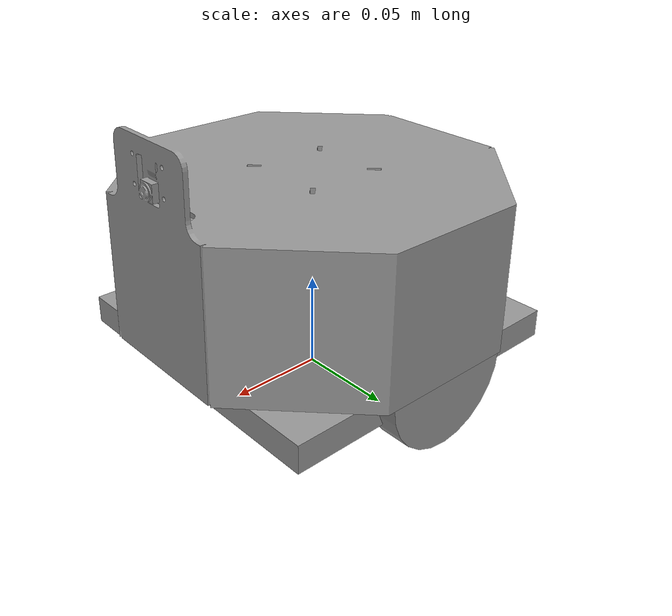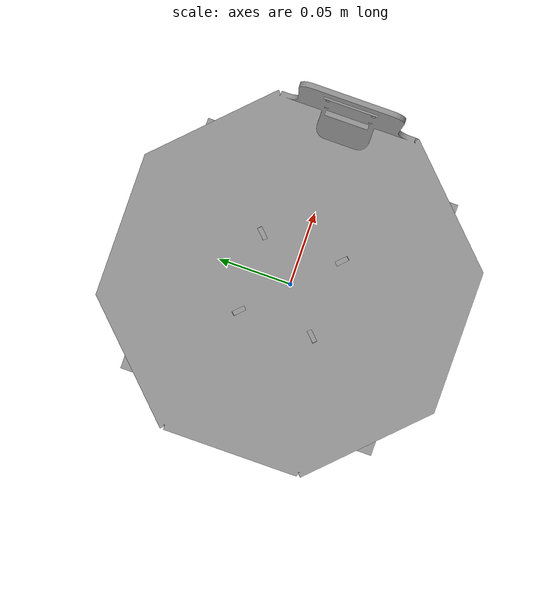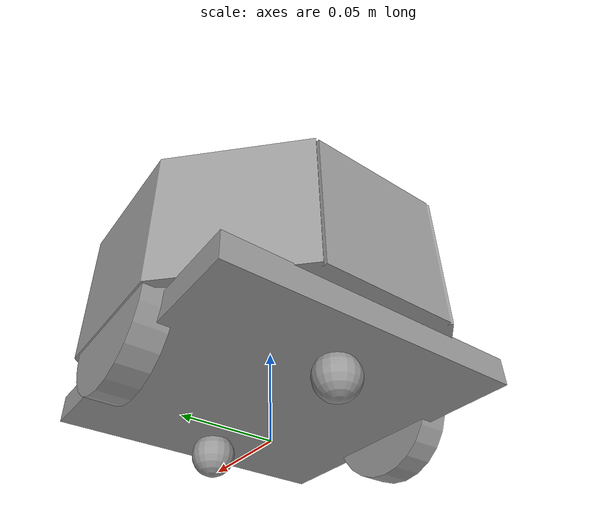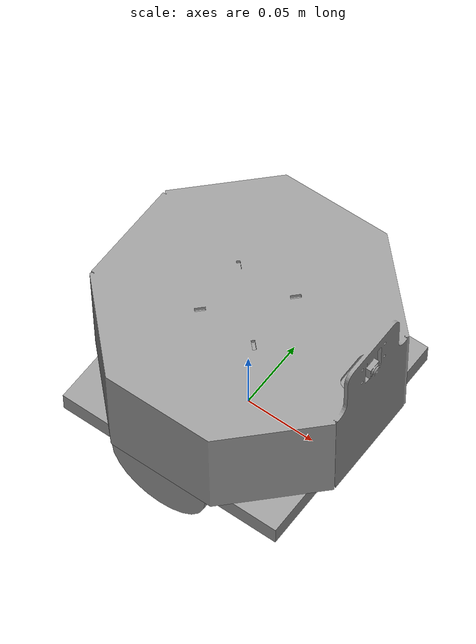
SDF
<?xml version='1.0'?>
<sdf version='1.6'>
  <model name='Romi'>
    <link name='chassis'>
      <pose frame=''>-0.001509 0 0.027 0 -0 0</pose>
      <inertial>
        <mass>0.00251652</mass>
        <inertia>
          <ixx>6.31e-06</ixx>
          <ixy>0</ixy>
          <ixz>0</ixz>
          <iyy>0.00020976</iyy>
          <iyz>0</iyz>
          <izz>0.00021598</izz>
        </inertia>
        <pose frame=''>0 0 0 0 -0 0</pose>
      </inertial>
      <self_collide>0</self_collide>
      <kinematic>0</kinematic>
      <visual name='visual'>
        <pose frame=''>0 0 0 0 -0 0</pose>
        <geometry>
          <box>
            <size>0.164 0.164 0.014559</size>
          </box>
        </geometry>
        <material>
          <lighting>1</lighting>
          <script>
            <uri>file://media/materials/scripts/gazebo.material</uri>
            <name>Gazebo/Grey</name>
          </script>
          <ambient>0.3 0.3 0.3 1</ambient>
          <diffuse>0.7 0.7 0.7 1</diffuse>
          <specular>0.01 0.01 0.01 1</specular>
          <emissive>0 0 0 1</emissive>
          <shader type='vertex'>
            <normal_map>__default__</normal_map>
          </shader>
        </material>
        <cast_shadows>1</cast_shadows>
        <transparency>0</transparency>
      </visual>
      <collision name='collision'>
        <laser_retro>0</laser_retro>
        <max_contacts>10</max_contacts>
        <pose frame=''>0 0 0 0 -0 0</pose>
        <geometry>
          <box>
            <size>0.164 0.164 0.014559</size>
          </box>
        </geometry>
        <surface>
          <friction>
            <ode>
              <mu>1</mu>
              <mu2>1</mu2>
              <fdir1>0 0 0</fdir1>
              <slip1>0</slip1>
              <slip2>0</slip2>
            </ode>
            <torsional>
              <coefficient>1</coefficient>
              <patch_radius>0</patch_radius>
              <surface_radius>0</surface_radius>
              <use_patch_radius>1</use_patch_radius>
              <ode>
                <slip>0</slip>
              </ode>
            </torsional>
          </friction>
          <bounce>
            <restitution_coefficient>0</restitution_coefficient>
            <threshold>1e+06</threshold>
          </bounce>
          <contact>
            <collide_without_contact>0</collide_without_contact>
            <collide_without_contact_bitmask>1</collide_without_contact_bitmask>
            <collide_bitmask>1</collide_bitmask>
            <ode>
              <soft_cfm>0</soft_cfm>
              <soft_erp>0.2</soft_erp>
              <kp>1e+13</kp>
              <kd>1</kd>
              <max_vel>0.01</max_vel>
              <min_depth>0</min_depth>
            </ode>
            <bullet>
              <split_impulse>1</split_impulse>
              <split_impulse_penetration_threshold>-0.01</split_impulse_penetration_threshold>
              <soft_cfm>0</soft_cfm>
              <soft_erp>0.2</soft_erp>
              <kp>1e+13</kp>
              <kd>1</kd>
            </bullet>
          </contact>
        </surface>
      </collision>
    </link>
    <link name='front_caster'>
      <pose frame=''>-0.051998 -0 0.012 0 -0 0</pose>
      <inertial>
        <mass>1.436e-05</mass>
        <inertia>
          <ixx>0</ixx>
          <ixy>0</ixy>
          <ixz>0</ixz>
          <iyy>0</iyy>
          <iyz>0</iyz>
          <izz>0</izz>
        </inertia>
        <pose frame=''>0 0 0 0 -0 0</pose>
      </inertial>
      <self_collide>0</self_collide>
      <kinematic>0</kinematic>
      <visual name='visual'>
        <pose frame=''>0 0 0 0 -0 0</pose>
        <geometry>
          <sphere>
            <radius>0.0121514</radius>
          </sphere>
        </geometry>
        <material>
          <lighting>1</lighting>
          <script>
            <uri>file://media/materials/scripts/gazebo.material</uri>
            <name>Gazebo/Grey</name>
          </script>
          <ambient>0.3 0.3 0.3 1</ambient>
          <diffuse>0.7 0.7 0.7 1</diffuse>
          <specular>0.01 0.01 0.01 1</specular>
          <emissive>0 0 0 1</emissive>
          <shader type='vertex'>
            <normal_map>__default__</normal_map>
          </shader>
        </material>
        <cast_shadows>1</cast_shadows>
        <transparency>0</transparency>
      </visual>
      <collision name='collision'>
        <laser_retro>0</laser_retro>
        <max_contacts>10</max_contacts>
        <pose frame=''>0 0 0 0 -0 0</pose>
        <geometry>
          <sphere>
            <radius>0.012151</radius>
          </sphere>
        </geometry>
        <surface>
          <friction>
            <ode>
              <mu>1</mu>
              <mu2>1</mu2>
              <fdir1>0 0 0</fdir1>
              <slip1>0</slip1>
              <slip2>0</slip2>
            </ode>
            <torsional>
              <coefficient>1</coefficient>
              <patch_radius>0</patch_radius>
              <surface_radius>0</surface_radius>
              <use_patch_radius>1</use_patch_radius>
              <ode>
                <slip>0</slip>
              </ode>
            </torsional>
          </friction>
          <bounce>
            <restitution_coefficient>0</restitution_coefficient>
            <threshold>1e+06</threshold>
          </bounce>
          <contact>
            <collide_without_contact>0</collide_without_contact>
            <collide_without_contact_bitmask>1</collide_without_contact_bitmask>
            <collide_bitmask>1</collide_bitmask>
            <ode>
              <soft_cfm>0</soft_cfm>
              <soft_erp>0.2</soft_erp>
              <kp>1e+13</kp>
              <kd>1</kd>
              <max_vel>0.01</max_vel>
              <min_depth>0</min_depth>
            </ode>
            <bullet>
              <split_impulse>1</split_impulse>
              <split_impulse_penetration_threshold>-0.01</split_impulse_penetration_threshold>
              <soft_cfm>0</soft_cfm>
              <soft_erp>0.2</soft_erp>
              <kp>1e+13</kp>
              <kd>1</kd>
            </bullet>
          </contact>
        </surface>
      </collision>
    </link>

    <link name='back_caster'>
      <pose frame=''>0.056523 0 0.012 0 -0 0</pose>
      <inertial>
        <mass>1.436e-05</mass>
        <inertia>
          <ixx>0</ixx>
          <ixy>0</ixy>
          <ixz>0</ixz>
          <iyy>0</iyy>
          <iyz>0</iyz>
          <izz>0</izz>
        </inertia>
        <pose frame=''>0 0 0 0 -0 0</pose>
      </inertial>
      <self_collide>0</self_collide>
      <kinematic>0</kinematic>
      <visual name='visual'>
        <pose frame=''>0 0 0 0 -0 0</pose>
        <geometry>
          <sphere>
            <radius>0.0121514</radius>
          </sphere>
        </geometry>
        <material>
          <lighting>1</lighting>
          <script>
            <uri>file://media/materials/scripts/gazebo.material</uri>
            <name>Gazebo/Grey</name>
          </script>
          <ambient>0.3 0.3 0.3 1</ambient>
          <diffuse>0.7 0.7 0.7 1</diffuse>
          <specular>0.01 0.01 0.01 1</specular>
          <emissive>0 0 0 1</emissive>
          <shader type='vertex'>
            <normal_map>__default__</normal_map>
          </shader>
        </material>
        <cast_shadows>1</cast_shadows>
        <transparency>0</transparency>
      </visual>
      <collision name='collision'>
        <laser_retro>0</laser_retro>
        <max_contacts>10</max_contacts>
        <pose frame=''>0 0 0 0 -0 0</pose>
        <geometry>
          <sphere>
            <radius>0.012151</radius>
          </sphere>
        </geometry>
        <surface>
          <friction>
            <ode>
              <mu>1</mu>
              <mu2>1</mu2>
              <fdir1>0 0 0</fdir1>
              <slip1>0</slip1>
              <slip2>0</slip2>
            </ode>
            <torsional>
              <coefficient>1</coefficient>
              <patch_radius>0</patch_radius>
              <surface_radius>0</surface_radius>
              <use_patch_radius>1</use_patch_radius>
              <ode>
                <slip>0</slip>
              </ode>
            </torsional>
          </friction>
          <bounce>
            <restitution_coefficient>0</restitution_coefficient>
            <threshold>1e+06</threshold>
          </bounce>
          <contact>
            <collide_without_contact>0</collide_without_contact>
            <collide_without_contact_bitmask>1</collide_without_contact_bitmask>
            <collide_bitmask>1</collide_bitmask>
            <ode>
              <soft_cfm>0</soft_cfm>
              <soft_erp>0.2</soft_erp>
              <kp>1e+13</kp>
              <kd>1</kd>
              <max_vel>0.01</max_vel>
              <min_depth>0</min_depth>
            </ode>
            <bullet>
              <split_impulse>1</split_impulse>
              <split_impulse_penetration_threshold>-0.01</split_impulse_penetration_threshold>
              <soft_cfm>0</soft_cfm>
              <soft_erp>0.2</soft_erp>
              <kp>1e+13</kp>
              <kd>1</kd>
            </bullet>
          </contact>
        </surface>
      </collision>
    </link>
	<link name='left_wheel'>
      <pose frame=''>-0.001509 0.08377 0.035 1.57 -0 0</pose>
      <inertial>
        <mass>8.439e-05</mass>
        <inertia>
          <ixx>3e-08</ixx>
          <ixy>0</ixy>
          <ixz>0</ixz>
          <iyy>3e-08</iyy>
          <iyz>0</iyz>
          <izz>5e-08</izz>
        </inertia>
        <pose frame=''>0 0 0 0 -0 0</pose>
      </inertial>
      <self_collide>0</self_collide>
      <kinematic>0</kinematic>
      <visual name='visual'>
        <pose frame=''>0 0 0 0 -0 0</pose>
        <geometry>
          <cylinder>
            <radius>0.0358674</radius>
            <length>0.0164037</length>
          </cylinder>
        </geometry>
        <material>
          <lighting>1</lighting>
          <script>
            <uri>file://media/materials/scripts/gazebo.material</uri>
            <name>Gazebo/Grey</name>
          </script>
          <ambient>0.3 0.3 0.3 1</ambient>
          <diffuse>0.7 0.7 0.7 1</diffuse>
          <specular>0.01 0.01 0.01 1</specular>
          <emissive>0 0 0 1</emissive>
          <shader type='vertex'>
            <normal_map>__default__</normal_map>
          </shader>
        </material>
        <cast_shadows>1</cast_shadows>
        <transparency>0</transparency>
      </visual>
      <collision name='collision'>
        <laser_retro>0</laser_retro>
        <max_contacts>10</max_contacts>
        <pose frame=''>0 0 0 0 -0 0</pose>
        <geometry>
          <cylinder>
            <radius>0.035867</radius>
            <length>0.016404</length>
          </cylinder>
        </geometry>
        <surface>
          <friction>
            <ode>
              <mu>1</mu>
              <mu2>1</mu2>
              <fdir1>0 0 0</fdir1>
              <slip1>0</slip1>
              <slip2>0</slip2>
            </ode>
            <torsional>
              <coefficient>1</coefficient>
              <patch_radius>0</patch_radius>
              <surface_radius>0</surface_radius>
              <use_patch_radius>1</use_patch_radius>
              <ode>
                <slip>0</slip>
              </ode>
            </torsional>
          </friction>
          <bounce>
            <restitution_coefficient>0</restitution_coefficient>
            <threshold>1e+06</threshold>
          </bounce>
          <contact>
            <collide_without_contact>0</collide_without_contact>
            <collide_without_contact_bitmask>1</collide_without_contact_bitmask>
            <collide_bitmask>1</collide_bitmask>
            <ode>
              <soft_cfm>0</soft_cfm>
              <soft_erp>0.2</soft_erp>
              <kp>1e+13</kp>
              <kd>1</kd>
              <max_vel>0.01</max_vel>
              <min_depth>0</min_depth>
            </ode>
            <bullet>
              <split_impulse>1</split_impulse>
              <split_impulse_penetration_threshold>-0.01</split_impulse_penetration_threshold>
              <soft_cfm>0</soft_cfm>
              <soft_erp>0.2</soft_erp>
              <kp>1e+13</kp>
              <kd>1</kd>
            </bullet>
          </contact>
        </surface>
      </collision>
    </link>

	<link name='right_wheel'>
      <pose frame=''>-0.001509 -0.08377 0.035 1.57 0 3.14</pose>
      <inertial>
        <mass>8.439e-05</mass>
        <inertia>
          <ixx>3e-08</ixx>
          <ixy>0</ixy>
          <ixz>0</ixz>
          <iyy>3e-08</iyy>
          <iyz>0</iyz>
          <izz>5e-08</izz>
        </inertia>
        <pose frame=''>0 0 0 0 -0 0</pose>
      </inertial>
      <self_collide>0</self_collide>
      <kinematic>0</kinematic>
      <visual name='visual'>
        <pose frame=''>0 0 0 0 -0 0</pose>
        <geometry>
          <cylinder>
            <radius>0.0358674</radius>
            <length>0.0164037</length>
          </cylinder>
        </geometry>
        <material>
          <lighting>1</lighting>
          <script>
            <uri>file://media/materials/scripts/gazebo.material</uri>
            <name>Gazebo/Grey</name>
          </script>
          <ambient>0.3 0.3 0.3 1</ambient>
          <diffuse>0.7 0.7 0.7 1</diffuse>
          <specular>0.01 0.01 0.01 1</specular>
          <emissive>0 0 0 1</emissive>
          <shader type='vertex'>
            <normal_map>__default__</normal_map>
          </shader>
        </material>
        <cast_shadows>1</cast_shadows>
        <transparency>0</transparency>
      </visual>
      <collision name='collision'>
        <laser_retro>0</laser_retro>
        <max_contacts>10</max_contacts>
        <pose frame=''>0 0 0 0 -0 0</pose>
        <geometry>
          <cylinder>
            <radius>0.035867</radius>
            <length>0.016404</length>
          </cylinder>
        </geometry>
        <surface>
          <friction>
            <ode>
              <mu>1</mu>
              <mu2>1</mu2>
              <fdir1>0 0 0</fdir1>
              <slip1>0</slip1>
              <slip2>0</slip2>
            </ode>
            <torsional>
              <coefficient>1</coefficient>
              <patch_radius>0</patch_radius>
              <surface_radius>0</surface_radius>
              <use_patch_radius>1</use_patch_radius>
              <ode>
                <slip>0</slip>
              </ode>
            </torsional>
          </friction>
          <bounce>
            <restitution_coefficient>0</restitution_coefficient>
            <threshold>1e+06</threshold>
          </bounce>
          <contact>
            <collide_without_contact>0</collide_without_contact>
            <collide_without_contact_bitmask>1</collide_without_contact_bitmask>
            <collide_bitmask>1</collide_bitmask>
            <ode>
              <soft_cfm>0</soft_cfm>
              <soft_erp>0.2</soft_erp>
              <kp>1e+13</kp>
              <kd>1</kd>
              <max_vel>0.01</max_vel>
              <min_depth>0</min_depth>
            </ode>
            <bullet>
              <split_impulse>1</split_impulse>
              <split_impulse_penetration_threshold>-0.01</split_impulse_penetration_threshold>
              <soft_cfm>0</soft_cfm>
              <soft_erp>0.2</soft_erp>
              <kp>1e+13</kp>
              <kd>1</kd>
            </bullet>
          </contact>
        </surface>
      </collision>
    </link>

    <link name='follower_tagboard'>
      <pose frame=''>0.01141 0.016667 0.069741 1e-05 -0.009639 -0.00122</pose>
      <inertial>
        <mass>0.00151652</mass>
        <inertia>
          <ixx>0.166667</ixx>
          <ixy>0</ixy>
          <ixz>0</ixz>
          <iyy>0.166667</iyy>
          <iyz>0</iyz>
          <izz>0.166667</izz>
        </inertia>
        <pose frame=''>0 0 0 0 -0 0</pose>
      </inertial>
      <self_collide>0</self_collide>
      <kinematic>0</kinematic>
      <gravity>1</gravity>
      <visual name='visual'>
        <pose frame=''>0 0 0 0 -0 0</pose>
        <geometry>
          <mesh>
            <uri>/home/robot/catkin_ws/src/robot_description/meshes/follower-tagboard.stl</uri>
          </mesh>
        </geometry>
        <material>
          <lighting>1</lighting>
          <script>
            <uri>file://media/materials/scripts/gazebo.material</uri>
            <name>Gazebo/Grey</name>
          </script>
          <ambient>0.3 0.3 0.3 1</ambient>
          <diffuse>0.7 0.7 0.7 1</diffuse>
          <specular>0.01 0.01 0.01 1</specular>
          <emissive>0 0 0 1</emissive>
          <shader type='vertex'>
            <normal_map>__default__</normal_map>
          </shader>
        </material>
        <cast_shadows>1</cast_shadows>
        <transparency>0</transparency>
      </visual>
      <collision name='collision'>
        <laser_retro>0</laser_retro>
        <max_contacts>10</max_contacts>
        <pose frame=''>0 0 0 0 -0 0</pose>
        <geometry>
          <mesh>
            <uri>/home/robot/catkin_ws/src/robot_description/meshes/follower-tagboard_.stl</uri>
          </mesh>
        </geometry>
        <surface>
          <friction>
            <ode>
              <mu>1</mu>
              <mu2>1</mu2>
              <fdir1>0 0 0</fdir1>
              <slip1>0</slip1>
              <slip2>0</slip2>
            </ode>
            <torsional>
              <coefficient>1</coefficient>
              <patch_radius>0</patch_radius>
              <surface_radius>0</surface_radius>
              <use_patch_radius>1</use_patch_radius>
              <ode>
                <slip>0</slip>
              </ode>
            </torsional>
          </friction>
          <bounce>
            <restitution_coefficient>0</restitution_coefficient>
            <threshold>1e+06</threshold>
          </bounce>
          <contact>
            <collide_without_contact>0</collide_without_contact>
            <collide_without_contact_bitmask>1</collide_without_contact_bitmask>
            <collide_bitmask>1</collide_bitmask>
            <ode>
              <soft_cfm>0</soft_cfm>
              <soft_erp>0.2</soft_erp>
              <kp>1e+13</kp>
              <kd>1</kd>
              <max_vel>0.01</max_vel>
              <min_depth>0</min_depth>
            </ode>
            <bullet>
              <split_impulse>1</split_impulse>
              <split_impulse_penetration_threshold>-0.01</split_impulse_penetration_threshold>
              <soft_cfm>0</soft_cfm>
              <soft_erp>0.2</soft_erp>
              <kp>1e+13</kp>
              <kd>1</kd>
            </bullet>
          </contact>
        </surface>
      </collision>
    </link>

	    <joint name='front_caster_joint' type='ball'>
      <parent>chassis</parent>
      <child>front_caster</child>
      <pose frame=''>0 0 0 0 -0 0</pose>
      <physics>
        <ode>
          <limit>
            <cfm>0</cfm>
            <erp>0.2</erp>
          </limit>
          <suspension>
            <cfm>0</cfm>
            <erp>0.2</erp>
          </suspension>
        </ode>
      </physics>
    </joint>

    <joint name='back_caster_joint' type='ball'>
      <parent>chassis</parent>
      <child>back_caster</child>
      <pose frame=''>0 0 0 0 -0 0</pose>
      <physics>
        <ode>
          <limit>
            <cfm>0</cfm>
            <erp>0.2</erp>
          </limit>
          <suspension>
            <cfm>0</cfm>
            <erp>0.2</erp>
          </suspension>
        </ode>
      </physics>
    </joint>

    <joint name='left_wheel_joint' type='revolute'>
      <parent>chassis</parent>
      <child>left_wheel</child>
      <pose frame=''>0 0 0 0 -0 0</pose>
      <axis>
        <xyz>0 0 1</xyz>
        <use_parent_model_frame>0</use_parent_model_frame>
        <limit>
          <lower>-1.79769e+308</lower>
          <upper>1.79769e+308</upper>
          <effort>-1</effort>
          <velocity>-1</velocity>
        </limit>
        <dynamics>
          <spring_reference>0</spring_reference>
          <spring_stiffness>0</spring_stiffness>
          <damping>0</damping>
          <friction>0</friction>
        </dynamics>
      </axis>
      <physics>
        <ode>
          <limit>
            <cfm>0</cfm>
            <erp>0.2</erp>
          </limit>
          <suspension>
            <cfm>0</cfm>
            <erp>0.2</erp>
          </suspension>
        </ode>
      </physics>
    </joint>
    <joint name='right_wheel_joint' type='revolute'>
      <parent>chassis</parent>
      <child>right_wheel</child>
      <pose frame=''>0 0 0 0 -0 0</pose>
      <axis>
        <xyz>0 0 1</xyz>
        <use_parent_model_frame>0</use_parent_model_frame>
        <limit>
          <lower>-1.79769e+308</lower>
          <upper>1.79769e+308</upper>
          <effort>-1</effort>
          <velocity>-1</velocity>
        </limit>
        <dynamics>
          <spring_reference>0</spring_reference>
          <spring_stiffness>0</spring_stiffness>
          <damping>0</damping>
          <friction>0</friction>
        </dynamics>
      </axis>
      <physics>
        <ode>
          <limit>
            <cfm>0</cfm>
            <erp>0.2</erp>
          </limit>
          <suspension>
            <cfm>0</cfm>
            <erp>0.2</erp>
          </suspension>
        </ode>
      </physics>
    </joint>
 <joint name='tagboard_joint' type='fixed'>
      <parent>chassis</parent>
      <child>follower_tagboard</child>
      <pose frame=''>0 0 0 0 -0 0</pose>
      <physics>
        <ode>
          <limit>
            <cfm>0</cfm>
            <erp>0.2</erp>
          </limit>
          <suspension>
            <cfm>0</cfm>
            <erp>0.2</erp>
          </suspension>
        </ode>
      </physics>
    </joint>

    <static>0</static>
    <allow_auto_disable>1</allow_auto_disable>
  </model>
</sdf>
